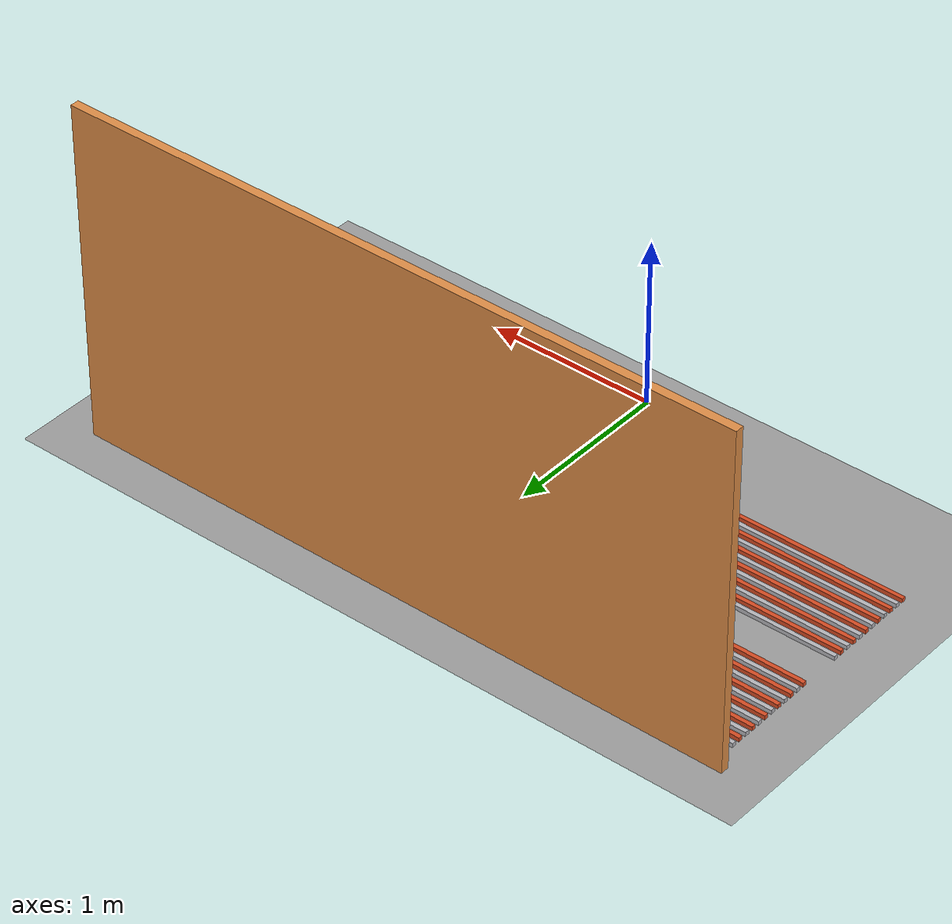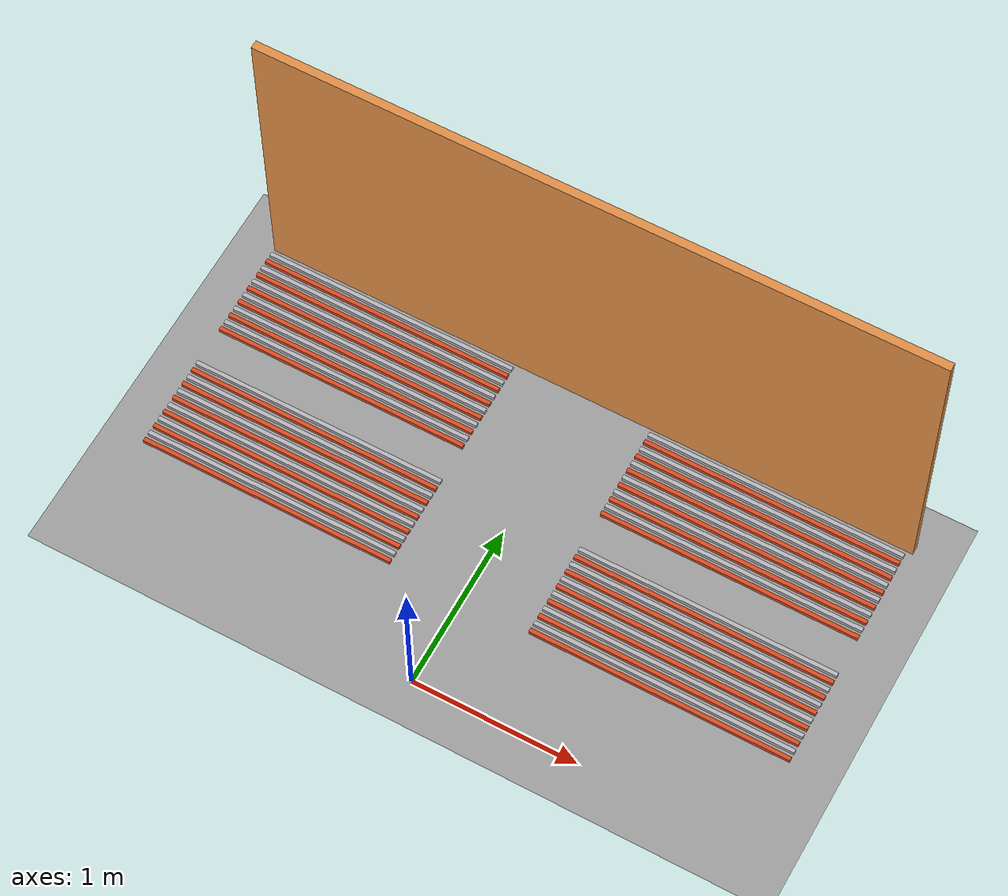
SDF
<sdf version="1.9">
 <world name="electrolysis_polygon_8_baths">
  <model name="ground_plane">
   <static>true</static>
   <link name="link">
    <collision name="collision">
     <geometry><plane><normal>0 0 1</normal><size>20 20</size></plane></geometry>
    </collision>
    <visual name="visual">
     <geometry><plane><normal>0 0 1</normal><size>20 20</size></plane></geometry>
     <material><ambient>0.62 0.62 0.62 1</ambient><diffuse>0.62 0.62 0.62 1</diffuse></material>
    </visual>
   </link>
  </model>
  <model name="bath_3_anode_01">
   <static>true</static>
   <pose>-1.2000 0.5250 0.0800 0 0 0</pose>
   <link name="link">
    <collision name="collision"><geometry><box><size>1.5500 0.0250 0.0250</size></box></geometry></collision>
    <visual name="visual">
     <geometry><box><size>1.5500 0.0250 0.0250</size></box></geometry>
     <material><ambient>0.85 0.30 0.14 1</ambient><diffuse>0.85 0.30 0.14 1</diffuse></material>
    </visual>
   </link>
  </model>
  <model name="bath_3_cathode_02">
   <static>true</static>
   <pose>-1.2000 0.5750 0.0800 0 0 0</pose>
   <link name="link">
    <collision name="collision"><geometry><box><size>1.5500 0.0250 0.0250</size></box></geometry></collision>
    <visual name="visual">
     <geometry><box><size>1.5500 0.0250 0.0250</size></box></geometry>
     <material><ambient>0.72 0.72 0.74 1</ambient><diffuse>0.72 0.72 0.74 1</diffuse></material>
    </visual>
   </link>
  </model>
  <model name="bath_3_anode_03">
   <static>true</static>
   <pose>-1.2000 0.6250 0.0800 0 0 0</pose>
   <link name="link">
    <collision name="collision"><geometry><box><size>1.5500 0.0250 0.0250</size></box></geometry></collision>
    <visual name="visual">
     <geometry><box><size>1.5500 0.0250 0.0250</size></box></geometry>
     <material><ambient>0.85 0.30 0.14 1</ambient><diffuse>0.85 0.30 0.14 1</diffuse></material>
    </visual>
   </link>
  </model>
  <model name="bath_3_cathode_04">
   <static>true</static>
   <pose>-1.2000 0.6750 0.0800 0 0 0</pose>
   <link name="link">
    <collision name="collision"><geometry><box><size>1.5500 0.0250 0.0250</size></box></geometry></collision>
    <visual name="visual">
     <geometry><box><size>1.5500 0.0250 0.0250</size></box></geometry>
     <material><ambient>0.72 0.72 0.74 1</ambient><diffuse>0.72 0.72 0.74 1</diffuse></material>
    </visual>
   </link>
  </model>
  <model name="bath_3_anode_05">
   <static>true</static>
   <pose>-1.2000 0.7250 0.0800 0 0 0</pose>
   <link name="link">
    <collision name="collision"><geometry><box><size>1.5500 0.0250 0.0250</size></box></geometry></collision>
    <visual name="visual">
     <geometry><box><size>1.5500 0.0250 0.0250</size></box></geometry>
     <material><ambient>0.85 0.30 0.14 1</ambient><diffuse>0.85 0.30 0.14 1</diffuse></material>
    </visual>
   </link>
  </model>
  <model name="bath_3_cathode_06">
   <static>true</static>
   <pose>-1.2000 0.7750 0.0800 0 0 0</pose>
   <link name="link">
    <collision name="collision"><geometry><box><size>1.5500 0.0250 0.0250</size></box></geometry></collision>
    <visual name="visual">
     <geometry><box><size>1.5500 0.0250 0.0250</size></box></geometry>
     <material><ambient>0.72 0.72 0.74 1</ambient><diffuse>0.72 0.72 0.74 1</diffuse></material>
    </visual>
   </link>
  </model>
  <model name="bath_3_anode_07">
   <static>true</static>
   <pose>-1.2000 0.8250 0.0800 0 0 0</pose>
   <link name="link">
    <collision name="collision"><geometry><box><size>1.5500 0.0250 0.0250</size></box></geometry></collision>
    <visual name="visual">
     <geometry><box><size>1.5500 0.0250 0.0250</size></box></geometry>
     <material><ambient>0.85 0.30 0.14 1</ambient><diffuse>0.85 0.30 0.14 1</diffuse></material>
    </visual>
   </link>
  </model>
  <model name="bath_3_cathode_08">
   <static>true</static>
   <pose>-1.2000 0.8750 0.0800 0 0 0</pose>
   <link name="link">
    <collision name="collision"><geometry><box><size>1.5500 0.0250 0.0250</size></box></geometry></collision>
    <visual name="visual">
     <geometry><box><size>1.5500 0.0250 0.0250</size></box></geometry>
     <material><ambient>0.72 0.72 0.74 1</ambient><diffuse>0.72 0.72 0.74 1</diffuse></material>
    </visual>
   </link>
  </model>
  <model name="bath_3_anode_09">
   <static>true</static>
   <pose>-1.2000 0.9250 0.0800 0 0 0</pose>
   <link name="link">
    <collision name="collision"><geometry><box><size>1.5500 0.0250 0.0250</size></box></geometry></collision>
    <visual name="visual">
     <geometry><box><size>1.5500 0.0250 0.0250</size></box></geometry>
     <material><ambient>0.85 0.30 0.14 1</ambient><diffuse>0.85 0.30 0.14 1</diffuse></material>
    </visual>
   </link>
  </model>
  <model name="bath_3_cathode_10">
   <static>true</static>
   <pose>-1.2000 0.9750 0.0800 0 0 0</pose>
   <link name="link">
    <collision name="collision"><geometry><box><size>1.5500 0.0250 0.0250</size></box></geometry></collision>
    <visual name="visual">
     <geometry><box><size>1.5500 0.0250 0.0250</size></box></geometry>
     <material><ambient>0.72 0.72 0.74 1</ambient><diffuse>0.72 0.72 0.74 1</diffuse></material>
    </visual>
   </link>
  </model>
  <model name="bath_3_anode_11">
   <static>true</static>
   <pose>-1.2000 1.0250 0.0800 0 0 0</pose>
   <link name="link">
    <collision name="collision"><geometry><box><size>1.5500 0.0250 0.0250</size></box></geometry></collision>
    <visual name="visual">
     <geometry><box><size>1.5500 0.0250 0.0250</size></box></geometry>
     <material><ambient>0.85 0.30 0.14 1</ambient><diffuse>0.85 0.30 0.14 1</diffuse></material>
    </visual>
   </link>
  </model>
  <model name="bath_3_cathode_12">
   <static>true</static>
   <pose>-1.2000 1.0750 0.0800 0 0 0</pose>
   <link name="link">
    <collision name="collision"><geometry><box><size>1.5500 0.0250 0.0250</size></box></geometry></collision>
    <visual name="visual">
     <geometry><box><size>1.5500 0.0250 0.0250</size></box></geometry>
     <material><ambient>0.72 0.72 0.74 1</ambient><diffuse>0.72 0.72 0.74 1</diffuse></material>
    </visual>
   </link>
  </model>
  <model name="bath_4_anode_01">
   <static>true</static>
   <pose>-1.2000 1.3250 0.0800 0 0 0</pose>
   <link name="link">
    <collision name="collision"><geometry><box><size>1.5500 0.0250 0.0250</size></box></geometry></collision>
    <visual name="visual">
     <geometry><box><size>1.5500 0.0250 0.0250</size></box></geometry>
     <material><ambient>0.85 0.30 0.14 1</ambient><diffuse>0.85 0.30 0.14 1</diffuse></material>
    </visual>
   </link>
  </model>
  <model name="bath_4_cathode_02">
   <static>true</static>
   <pose>-1.2000 1.3750 0.0800 0 0 0</pose>
   <link name="link">
    <collision name="collision"><geometry><box><size>1.5500 0.0250 0.0250</size></box></geometry></collision>
    <visual name="visual">
     <geometry><box><size>1.5500 0.0250 0.0250</size></box></geometry>
     <material><ambient>0.72 0.72 0.74 1</ambient><diffuse>0.72 0.72 0.74 1</diffuse></material>
    </visual>
   </link>
  </model>
  <model name="bath_4_anode_03">
   <static>true</static>
   <pose>-1.2000 1.4250 0.0800 0 0 0</pose>
   <link name="link">
    <collision name="collision"><geometry><box><size>1.5500 0.0250 0.0250</size></box></geometry></collision>
    <visual name="visual">
     <geometry><box><size>1.5500 0.0250 0.0250</size></box></geometry>
     <material><ambient>0.85 0.30 0.14 1</ambient><diffuse>0.85 0.30 0.14 1</diffuse></material>
    </visual>
   </link>
  </model>
  <model name="bath_4_cathode_04">
   <static>true</static>
   <pose>-1.2000 1.4750 0.0800 0 0 0</pose>
   <link name="link">
    <collision name="collision"><geometry><box><size>1.5500 0.0250 0.0250</size></box></geometry></collision>
    <visual name="visual">
     <geometry><box><size>1.5500 0.0250 0.0250</size></box></geometry>
     <material><ambient>0.72 0.72 0.74 1</ambient><diffuse>0.72 0.72 0.74 1</diffuse></material>
    </visual>
   </link>
  </model>
  <model name="bath_4_anode_05">
   <static>true</static>
   <pose>-1.2000 1.5250 0.0800 0 0 0</pose>
   <link name="link">
    <collision name="collision"><geometry><box><size>1.5500 0.0250 0.0250</size></box></geometry></collision>
    <visual name="visual">
     <geometry><box><size>1.5500 0.0250 0.0250</size></box></geometry>
     <material><ambient>0.85 0.30 0.14 1</ambient><diffuse>0.85 0.30 0.14 1</diffuse></material>
    </visual>
   </link>
  </model>
  <model name="bath_4_cathode_06">
   <static>true</static>
   <pose>-1.2000 1.5750 0.0800 0 0 0</pose>
   <link name="link">
    <collision name="collision"><geometry><box><size>1.5500 0.0250 0.0250</size></box></geometry></collision>
    <visual name="visual">
     <geometry><box><size>1.5500 0.0250 0.0250</size></box></geometry>
     <material><ambient>0.72 0.72 0.74 1</ambient><diffuse>0.72 0.72 0.74 1</diffuse></material>
    </visual>
   </link>
  </model>
  <model name="bath_4_anode_07">
   <static>true</static>
   <pose>-1.2000 1.6250 0.0800 0 0 0</pose>
   <link name="link">
    <collision name="collision"><geometry><box><size>1.5500 0.0250 0.0250</size></box></geometry></collision>
    <visual name="visual">
     <geometry><box><size>1.5500 0.0250 0.0250</size></box></geometry>
     <material><ambient>0.85 0.30 0.14 1</ambient><diffuse>0.85 0.30 0.14 1</diffuse></material>
    </visual>
   </link>
  </model>
  <model name="bath_4_cathode_08">
   <static>true</static>
   <pose>-1.2000 1.6750 0.0800 0 0 0</pose>
   <link name="link">
    <collision name="collision"><geometry><box><size>1.5500 0.0250 0.0250</size></box></geometry></collision>
    <visual name="visual">
     <geometry><box><size>1.5500 0.0250 0.0250</size></box></geometry>
     <material><ambient>0.72 0.72 0.74 1</ambient><diffuse>0.72 0.72 0.74 1</diffuse></material>
    </visual>
   </link>
  </model>
  <model name="bath_4_anode_09">
   <static>true</static>
   <pose>-1.2000 1.7250 0.0800 0 0 0</pose>
   <link name="link">
    <collision name="collision"><geometry><box><size>1.5500 0.0250 0.0250</size></box></geometry></collision>
    <visual name="visual">
     <geometry><box><size>1.5500 0.0250 0.0250</size></box></geometry>
     <material><ambient>0.85 0.30 0.14 1</ambient><diffuse>0.85 0.30 0.14 1</diffuse></material>
    </visual>
   </link>
  </model>
  <model name="bath_4_cathode_10">
   <static>true</static>
   <pose>-1.2000 1.7750 0.0800 0 0 0</pose>
   <link name="link">
    <collision name="collision"><geometry><box><size>1.5500 0.0250 0.0250</size></box></geometry></collision>
    <visual name="visual">
     <geometry><box><size>1.5500 0.0250 0.0250</size></box></geometry>
     <material><ambient>0.72 0.72 0.74 1</ambient><diffuse>0.72 0.72 0.74 1</diffuse></material>
    </visual>
   </link>
  </model>
  <model name="bath_4_anode_11">
   <static>true</static>
   <pose>-1.2000 1.8250 0.0800 0 0 0</pose>
   <link name="link">
    <collision name="collision"><geometry><box><size>1.5500 0.0250 0.0250</size></box></geometry></collision>
    <visual name="visual">
     <geometry><box><size>1.5500 0.0250 0.0250</size></box></geometry>
     <material><ambient>0.85 0.30 0.14 1</ambient><diffuse>0.85 0.30 0.14 1</diffuse></material>
    </visual>
   </link>
  </model>
  <model name="bath_4_cathode_12">
   <static>true</static>
   <pose>-1.2000 1.8750 0.0800 0 0 0</pose>
   <link name="link">
    <collision name="collision"><geometry><box><size>1.5500 0.0250 0.0250</size></box></geometry></collision>
    <visual name="visual">
     <geometry><box><size>1.5500 0.0250 0.0250</size></box></geometry>
     <material><ambient>0.72 0.72 0.74 1</ambient><diffuse>0.72 0.72 0.74 1</diffuse></material>
    </visual>
   </link>
  </model>
  <model name="bath_7_anode_01">
   <static>true</static>
   <pose>1.2000 0.5250 0.0800 0 0 0</pose>
   <link name="link">
    <collision name="collision"><geometry><box><size>1.5500 0.0250 0.0250</size></box></geometry></collision>
    <visual name="visual">
     <geometry><box><size>1.5500 0.0250 0.0250</size></box></geometry>
     <material><ambient>0.85 0.30 0.14 1</ambient><diffuse>0.85 0.30 0.14 1</diffuse></material>
    </visual>
   </link>
  </model>
  <model name="bath_7_cathode_02">
   <static>true</static>
   <pose>1.2000 0.5750 0.0800 0 0 0</pose>
   <link name="link">
    <collision name="collision"><geometry><box><size>1.5500 0.0250 0.0250</size></box></geometry></collision>
    <visual name="visual">
     <geometry><box><size>1.5500 0.0250 0.0250</size></box></geometry>
     <material><ambient>0.72 0.72 0.74 1</ambient><diffuse>0.72 0.72 0.74 1</diffuse></material>
    </visual>
   </link>
  </model>
  <model name="bath_7_anode_03">
   <static>true</static>
   <pose>1.2000 0.6250 0.0800 0 0 0</pose>
   <link name="link">
    <collision name="collision"><geometry><box><size>1.5500 0.0250 0.0250</size></box></geometry></collision>
    <visual name="visual">
     <geometry><box><size>1.5500 0.0250 0.0250</size></box></geometry>
     <material><ambient>0.85 0.30 0.14 1</ambient><diffuse>0.85 0.30 0.14 1</diffuse></material>
    </visual>
   </link>
  </model>
  <model name="bath_7_cathode_04">
   <static>true</static>
   <pose>1.2000 0.6750 0.0800 0 0 0</pose>
   <link name="link">
    <collision name="collision"><geometry><box><size>1.5500 0.0250 0.0250</size></box></geometry></collision>
    <visual name="visual">
     <geometry><box><size>1.5500 0.0250 0.0250</size></box></geometry>
     <material><ambient>0.72 0.72 0.74 1</ambient><diffuse>0.72 0.72 0.74 1</diffuse></material>
    </visual>
   </link>
  </model>
  <model name="bath_7_anode_05">
   <static>true</static>
   <pose>1.2000 0.7250 0.0800 0 0 0</pose>
   <link name="link">
    <collision name="collision"><geometry><box><size>1.5500 0.0250 0.0250</size></box></geometry></collision>
    <visual name="visual">
     <geometry><box><size>1.5500 0.0250 0.0250</size></box></geometry>
     <material><ambient>0.85 0.30 0.14 1</ambient><diffuse>0.85 0.30 0.14 1</diffuse></material>
    </visual>
   </link>
  </model>
  <model name="bath_7_cathode_06">
   <static>true</static>
   <pose>1.2000 0.7750 0.0800 0 0 0</pose>
   <link name="link">
    <collision name="collision"><geometry><box><size>1.5500 0.0250 0.0250</size></box></geometry></collision>
    <visual name="visual">
     <geometry><box><size>1.5500 0.0250 0.0250</size></box></geometry>
     <material><ambient>0.72 0.72 0.74 1</ambient><diffuse>0.72 0.72 0.74 1</diffuse></material>
    </visual>
   </link>
  </model>
  <model name="bath_7_anode_07">
   <static>true</static>
   <pose>1.2000 0.8250 0.0800 0 0 0</pose>
   <link name="link">
    <collision name="collision"><geometry><box><size>1.5500 0.0250 0.0250</size></box></geometry></collision>
    <visual name="visual">
     <geometry><box><size>1.5500 0.0250 0.0250</size></box></geometry>
     <material><ambient>0.85 0.30 0.14 1</ambient><diffuse>0.85 0.30 0.14 1</diffuse></material>
    </visual>
   </link>
  </model>
  <model name="bath_7_cathode_08">
   <static>true</static>
   <pose>1.2000 0.8750 0.0800 0 0 0</pose>
   <link name="link">
    <collision name="collision"><geometry><box><size>1.5500 0.0250 0.0250</size></box></geometry></collision>
    <visual name="visual">
     <geometry><box><size>1.5500 0.0250 0.0250</size></box></geometry>
     <material><ambient>0.72 0.72 0.74 1</ambient><diffuse>0.72 0.72 0.74 1</diffuse></material>
    </visual>
   </link>
  </model>
  <model name="bath_7_anode_09">
   <static>true</static>
   <pose>1.2000 0.9250 0.0800 0 0 0</pose>
   <link name="link">
    <collision name="collision"><geometry><box><size>1.5500 0.0250 0.0250</size></box></geometry></collision>
    <visual name="visual">
     <geometry><box><size>1.5500 0.0250 0.0250</size></box></geometry>
     <material><ambient>0.85 0.30 0.14 1</ambient><diffuse>0.85 0.30 0.14 1</diffuse></material>
    </visual>
   </link>
  </model>
  <model name="bath_7_cathode_10">
   <static>true</static>
   <pose>1.2000 0.9750 0.0800 0 0 0</pose>
   <link name="link">
    <collision name="collision"><geometry><box><size>1.5500 0.0250 0.0250</size></box></geometry></collision>
    <visual name="visual">
     <geometry><box><size>1.5500 0.0250 0.0250</size></box></geometry>
     <material><ambient>0.72 0.72 0.74 1</ambient><diffuse>0.72 0.72 0.74 1</diffuse></material>
    </visual>
   </link>
  </model>
  <model name="bath_7_anode_11">
   <static>true</static>
   <pose>1.2000 1.0250 0.0800 0 0 0</pose>
   <link name="link">
    <collision name="collision"><geometry><box><size>1.5500 0.0250 0.0250</size></box></geometry></collision>
    <visual name="visual">
     <geometry><box><size>1.5500 0.0250 0.0250</size></box></geometry>
     <material><ambient>0.85 0.30 0.14 1</ambient><diffuse>0.85 0.30 0.14 1</diffuse></material>
    </visual>
   </link>
  </model>
  <model name="bath_7_cathode_12">
   <static>true</static>
   <pose>1.2000 1.0750 0.0800 0 0 0</pose>
   <link name="link">
    <collision name="collision"><geometry><box><size>1.5500 0.0250 0.0250</size></box></geometry></collision>
    <visual name="visual">
     <geometry><box><size>1.5500 0.0250 0.0250</size></box></geometry>
     <material><ambient>0.72 0.72 0.74 1</ambient><diffuse>0.72 0.72 0.74 1</diffuse></material>
    </visual>
   </link>
  </model>
  <model name="bath_8_anode_01">
   <static>true</static>
   <pose>1.2000 1.3250 0.0800 0 0 0</pose>
   <link name="link">
    <collision name="collision"><geometry><box><size>1.5500 0.0250 0.0250</size></box></geometry></collision>
    <visual name="visual">
     <geometry><box><size>1.5500 0.0250 0.0250</size></box></geometry>
     <material><ambient>0.85 0.30 0.14 1</ambient><diffuse>0.85 0.30 0.14 1</diffuse></material>
    </visual>
   </link>
  </model>
  <model name="bath_8_cathode_02">
   <static>true</static>
   <pose>1.2000 1.3750 0.0800 0 0 0</pose>
   <link name="link">
    <collision name="collision"><geometry><box><size>1.5500 0.0250 0.0250</size></box></geometry></collision>
    <visual name="visual">
     <geometry><box><size>1.5500 0.0250 0.0250</size></box></geometry>
     <material><ambient>0.72 0.72 0.74 1</ambient><diffuse>0.72 0.72 0.74 1</diffuse></material>
    </visual>
   </link>
  </model>
  <model name="bath_8_anode_03">
   <static>true</static>
   <pose>1.2000 1.4250 0.0800 0 0 0</pose>
   <link name="link">
    <collision name="collision"><geometry><box><size>1.5500 0.0250 0.0250</size></box></geometry></collision>
    <visual name="visual">
     <geometry><box><size>1.5500 0.0250 0.0250</size></box></geometry>
     <material><ambient>0.85 0.30 0.14 1</ambient><diffuse>0.85 0.30 0.14 1</diffuse></material>
    </visual>
   </link>
  </model>
  <model name="bath_8_cathode_04">
   <static>true</static>
   <pose>1.2000 1.4750 0.0800 0 0 0</pose>
   <link name="link">
    <collision name="collision"><geometry><box><size>1.5500 0.0250 0.0250</size></box></geometry></collision>
    <visual name="visual">
     <geometry><box><size>1.5500 0.0250 0.0250</size></box></geometry>
     <material><ambient>0.72 0.72 0.74 1</ambient><diffuse>0.72 0.72 0.74 1</diffuse></material>
    </visual>
   </link>
  </model>
  <model name="bath_8_anode_05">
   <static>true</static>
   <pose>1.2000 1.5250 0.0800 0 0 0</pose>
   <link name="link">
    <collision name="collision"><geometry><box><size>1.5500 0.0250 0.0250</size></box></geometry></collision>
    <visual name="visual">
     <geometry><box><size>1.5500 0.0250 0.0250</size></box></geometry>
     <material><ambient>0.85 0.30 0.14 1</ambient><diffuse>0.85 0.30 0.14 1</diffuse></material>
    </visual>
   </link>
  </model>
  <model name="bath_8_cathode_06">
   <static>true</static>
   <pose>1.2000 1.5750 0.0800 0 0 0</pose>
   <link name="link">
    <collision name="collision"><geometry><box><size>1.5500 0.0250 0.0250</size></box></geometry></collision>
    <visual name="visual">
     <geometry><box><size>1.5500 0.0250 0.0250</size></box></geometry>
     <material><ambient>0.72 0.72 0.74 1</ambient><diffuse>0.72 0.72 0.74 1</diffuse></material>
    </visual>
   </link>
  </model>
  <model name="bath_8_anode_07">
   <static>true</static>
   <pose>1.2000 1.6250 0.0800 0 0 0</pose>
   <link name="link">
    <collision name="collision"><geometry><box><size>1.5500 0.0250 0.0250</size></box></geometry></collision>
    <visual name="visual">
     <geometry><box><size>1.5500 0.0250 0.0250</size></box></geometry>
     <material><ambient>0.85 0.30 0.14 1</ambient><diffuse>0.85 0.30 0.14 1</diffuse></material>
    </visual>
   </link>
  </model>
  <model name="bath_8_cathode_08">
   <static>true</static>
   <pose>1.2000 1.6750 0.0800 0 0 0</pose>
   <link name="link">
    <collision name="collision"><geometry><box><size>1.5500 0.0250 0.0250</size></box></geometry></collision>
    <visual name="visual">
     <geometry><box><size>1.5500 0.0250 0.0250</size></box></geometry>
     <material><ambient>0.72 0.72 0.74 1</ambient><diffuse>0.72 0.72 0.74 1</diffuse></material>
    </visual>
   </link>
  </model>
  <model name="bath_8_anode_09">
   <static>true</static>
   <pose>1.2000 1.7250 0.0800 0 0 0</pose>
   <link name="link">
    <collision name="collision"><geometry><box><size>1.5500 0.0250 0.0250</size></box></geometry></collision>
    <visual name="visual">
     <geometry><box><size>1.5500 0.0250 0.0250</size></box></geometry>
     <material><ambient>0.85 0.30 0.14 1</ambient><diffuse>0.85 0.30 0.14 1</diffuse></material>
    </visual>
   </link>
  </model>
  <model name="bath_8_cathode_10">
   <static>true</static>
   <pose>1.2000 1.7750 0.0800 0 0 0</pose>
   <link name="link">
    <collision name="collision"><geometry><box><size>1.5500 0.0250 0.0250</size></box></geometry></collision>
    <visual name="visual">
     <geometry><box><size>1.5500 0.0250 0.0250</size></box></geometry>
     <material><ambient>0.72 0.72 0.74 1</ambient><diffuse>0.72 0.72 0.74 1</diffuse></material>
    </visual>
   </link>
  </model>
  <model name="bath_8_anode_11">
   <static>true</static>
   <pose>1.2000 1.8250 0.0800 0 0 0</pose>
   <link name="link">
    <collision name="collision"><geometry><box><size>1.5500 0.0250 0.0250</size></box></geometry></collision>
    <visual name="visual">
     <geometry><box><size>1.5500 0.0250 0.0250</size></box></geometry>
     <material><ambient>0.85 0.30 0.14 1</ambient><diffuse>0.85 0.30 0.14 1</diffuse></material>
    </visual>
   </link>
  </model>
  <model name="bath_8_cathode_12">
   <static>true</static>
   <pose>1.2000 1.8750 0.0800 0 0 0</pose>
   <link name="link">
    <collision name="collision"><geometry><box><size>1.5500 0.0250 0.0250</size></box></geometry></collision>
    <visual name="visual">
     <geometry><box><size>1.5500 0.0250 0.0250</size></box></geometry>
     <material><ambient>0.72 0.72 0.74 1</ambient><diffuse>0.72 0.72 0.74 1</diffuse></material>
    </visual>
   </link>
  </model>
  <model name="rear_wall">
   <static>true</static>
   <pose>0.0000 1.9750 1.0000 0 0 0</pose>
   <link name="link">
    <collision name="collision"><geometry><box><size>4.0000 0.0500 2.0000</size></box></geometry></collision>
    <visual name="visual">
     <geometry><box><size>4.0000 0.0500 2.0000</size></box></geometry>
     <material><ambient>0.88 0.56 0.28 1</ambient><diffuse>0.88 0.56 0.28 1</diffuse></material>
    </visual>
   </link>
  </model>
 </world>
</sdf>
